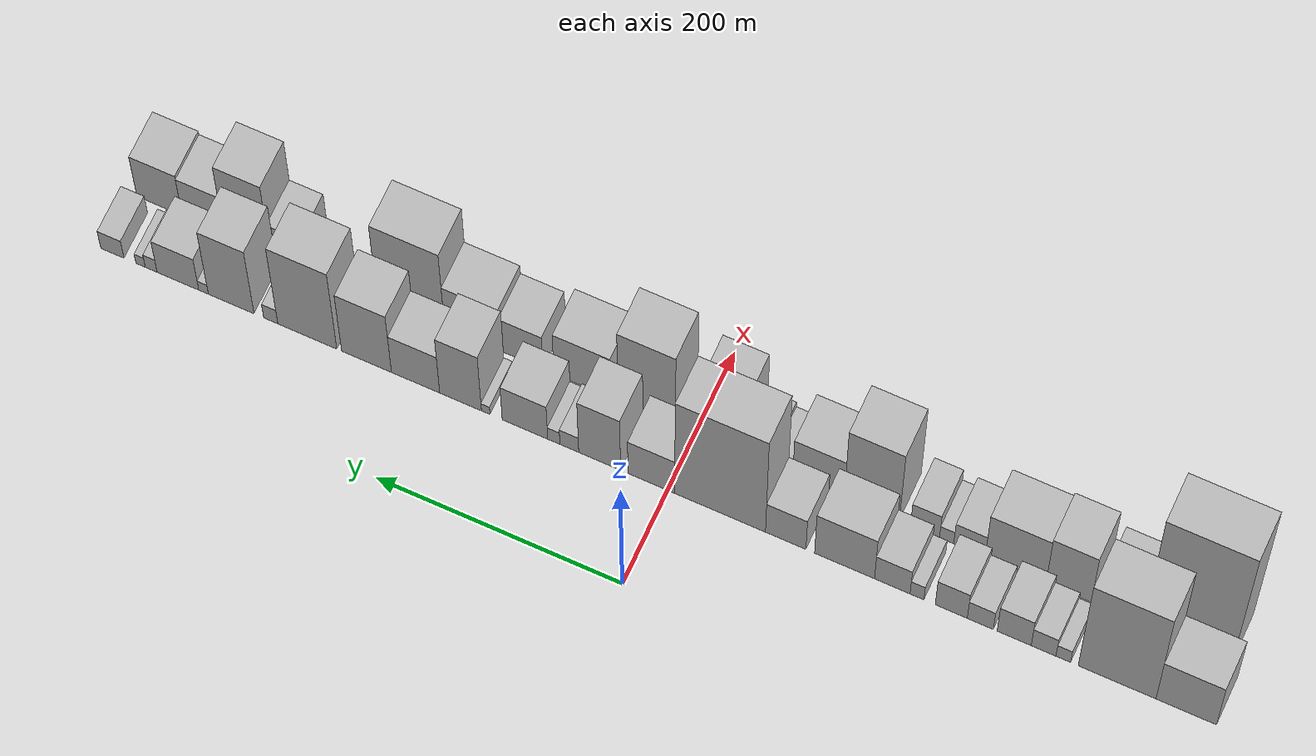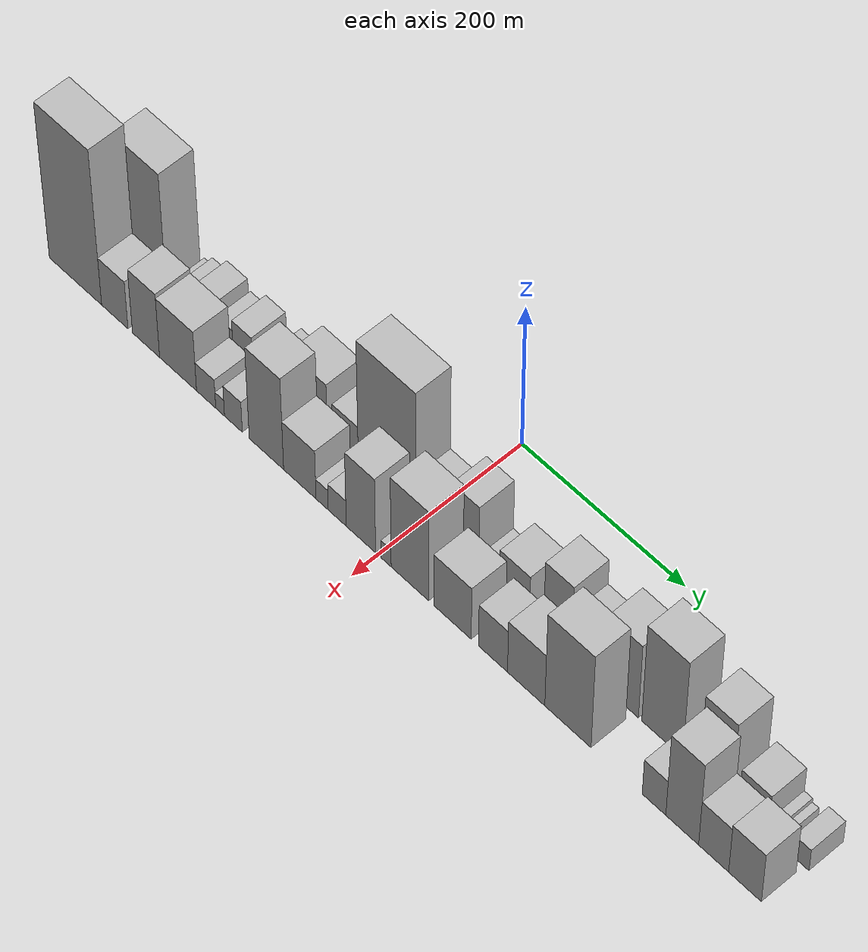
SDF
<sdf version="1.6">
 <world name="default">
  <scene>
   <sky><clouds><speed>12</speed></clouds></sky>
   <ambient>0.4 0.4 0.4 1</ambient>
   <background>0.7 0.7 0.7 1</background>
   <shadows>1</shadows>
  </scene>
  <gravity>0 0 -9.8066</gravity>
  <magnetic_field>6e-06 2.3e-05 -4.2e-05</magnetic_field>
  <physics default="0" name="default_physics" type="ode">
   <ode>
    <solver>
     <type>quick</type>
     <iters>10</iters>
     <sor>1.0</sor>
     <use_dynamic_moi_rescaling>0</use_dynamic_moi_rescaling>
    </solver>
    <constraints>
     <cfm>0</cfm>
     <erp>0.2</erp>
     <contact_max_correcting_vel>100</contact_max_correcting_vel>
     <contact_surface_layer>0.001</contact_surface_layer>
    </constraints>
   </ode>
   <max_step_size>0.004</max_step_size>
   <real_time_factor>1</real_time_factor>
   <real_time_update_rate>250</real_time_update_rate>
  </physics>
  <light name="sun" type="directional">
   <pose>0 0 10 0 0 0</pose>
   <diffuse>0.8 0.8 0.8 1</diffuse>
   <specular>0.2 0.2 0.2 1</specular>
   <attenuation>
    <range>1000</range>
    <constant>0.9</constant>
    <linear>0.01</linear>
    <quadratic>0.001</quadratic>
   </attenuation>
   <direction>-0.5 0.1 -0.9</direction>
  </light>
  <model name="building_1">
   <static>1</static>
   <pose>100.0000 -414.1262 0 0.000000 0.000000 0.000000</pose>
   <link name="link">
    <pose>0 0 40.50 0 0 0</pose>
    <collision name="collision"><geometry><box><size>40.0000 47.7477 81.0000</size></box></geometry></collision>
    <visual name="visual">
     <cast_shadows>0</cast_shadows>
     <geometry><box><size>40.0000 47.7477 81.0000</size></box></geometry>
     <material>
      <script>
       <uri>model://HANNAS_wall/materials/scripts</uri>
       <uri>model://HANNAS_wall/materials/textures</uri>
       <name>vrc/HANNAS_wall</name>
      </script>
     </material>
    </visual>
   </link>
  </model>
  <model name="building_2">
   <static>1</static>
   <pose>100.0000 -359.4603 0 0.000000 0.000000 0.000000</pose>
   <link name="link">
    <pose>0 0 87.00 0 0 0</pose>
    <collision name="collision"><geometry><box><size>40.0000 61.5841 174.0000</size></box></geometry></collision>
    <visual name="visual">
     <cast_shadows>0</cast_shadows>
     <geometry><box><size>40.0000 61.5841 174.0000</size></box></geometry>
     <material>
      <script>
       <uri>model://HANNAS_wall/materials/scripts</uri>
       <uri>model://HANNAS_wall/materials/textures</uri>
       <name>vrc/HANNAS_wall</name>
      </script>
     </material>
    </visual>
   </link>
  </model>
  <model name="building_3">
   <static>1</static>
   <pose>100.0000 -316.8446 0 0.000000 0.000000 0.000000</pose>
   <link name="link">
    <pose>0 0 12.00 0 0 0</pose>
    <collision name="collision"><geometry><box><size>40.0000 11.6473 24.0000</size></box></geometry></collision>
    <visual name="visual">
     <cast_shadows>0</cast_shadows>
     <geometry><box><size>40.0000 11.6473 24.0000</size></box></geometry>
     <material>
      <script>
       <uri>model://HANNAS_wall/materials/scripts</uri>
       <uri>model://HANNAS_wall/materials/textures</uri>
       <name>vrc/HANNAS_wall</name>
      </script>
     </material>
    </visual>
   </link>
  </model>
  <model name="building_4">
   <static>1</static>
   <pose>100.0000 -301.1855 0 0.000000 0.000000 0.000000</pose>
   <link name="link">
    <pose>0 0 18.00 0 0 0</pose>
    <collision name="collision"><geometry><box><size>40.0000 19.6709 36.0000</size></box></geometry></collision>
    <visual name="visual">
     <cast_shadows>0</cast_shadows>
     <geometry><box><size>40.0000 19.6709 36.0000</size></box></geometry>
     <material>
      <script>
       <uri>model://HANNAS_wall/materials/scripts</uri>
       <uri>model://HANNAS_wall/materials/textures</uri>
       <name>vrc/HANNAS_wall</name>
      </script>
     </material>
    </visual>
   </link>
  </model>
  <model name="building_5">
   <static>1</static>
   <pose>100.0000 -277.7827 0 0.000000 0.000000 0.000000</pose>
   <link name="link">
    <pose>0 0 25.50 0 0 0</pose>
    <collision name="collision"><geometry><box><size>40.0000 27.1347 51.0000</size></box></geometry></collision>
    <visual name="visual">
     <cast_shadows>0</cast_shadows>
     <geometry><box><size>40.0000 27.1347 51.0000</size></box></geometry>
     <material>
      <script>
       <uri>model://HANNAS_wall/materials/scripts</uri>
       <uri>model://HANNAS_wall/materials/textures</uri>
       <name>vrc/HANNAS_wall</name>
      </script>
     </material>
    </visual>
   </link>
  </model>
  <model name="building_6">
   <static>1</static>
   <pose>100.0000 -250.8460 0 0.000000 0.000000 0.000000</pose>
   <link name="link">
    <pose>0 0 18.00 0 0 0</pose>
    <collision name="collision"><geometry><box><size>40.0000 20.7386 36.0000</size></box></geometry></collision>
    <visual name="visual">
     <cast_shadows>0</cast_shadows>
     <geometry><box><size>40.0000 20.7386 36.0000</size></box></geometry>
     <material>
      <script>
       <uri>model://HANNAS_wall/materials/scripts</uri>
       <uri>model://HANNAS_wall/materials/textures</uri>
       <name>vrc/HANNAS_wall</name>
      </script>
     </material>
    </visual>
   </link>
  </model>
  <model name="building_7">
   <static>1</static>
   <pose>100.0000 -227.6846 0 0.000000 0.000000 0.000000</pose>
   <link name="link">
    <pose>0 0 25.50 0 0 0</pose>
    <collision name="collision"><geometry><box><size>40.0000 25.5841 51.0000</size></box></geometry></collision>
    <visual name="visual">
     <cast_shadows>0</cast_shadows>
     <geometry><box><size>40.0000 25.5841 51.0000</size></box></geometry>
     <material>
      <script>
       <uri>model://HANNAS_wall/materials/scripts</uri>
       <uri>model://HANNAS_wall/materials/textures</uri>
       <name>vrc/HANNAS_wall</name>
      </script>
     </material>
    </visual>
   </link>
  </model>
  <model name="building_8">
   <static>1</static>
   <pose>100.0000 -200.3290 0 0.000000 0.000000 0.000000</pose>
   <link name="link">
    <pose>0 0 13.50 0 0 0</pose>
    <collision name="collision"><geometry><box><size>40.0000 11.1272 27.0000</size></box></geometry></collision>
    <visual name="visual">
     <cast_shadows>0</cast_shadows>
     <geometry><box><size>40.0000 11.1272 27.0000</size></box></geometry>
     <material>
      <script>
       <uri>model://HANNAS_wall/materials/scripts</uri>
       <uri>model://HANNAS_wall/materials/textures</uri>
       <name>vrc/HANNAS_wall</name>
      </script>
     </material>
    </visual>
   </link>
  </model>
  <model name="building_9">
   <static>1</static>
   <pose>100.0000 -180.5506 0 0.000000 0.000000 0.000000</pose>
   <link name="link">
    <pose>0 0 24.00 0 0 0</pose>
    <collision name="collision"><geometry><box><size>40.0000 28.4294 48.0000</size></box></geometry></collision>
    <visual name="visual">
     <cast_shadows>0</cast_shadows>
     <geometry><box><size>40.0000 28.4294 48.0000</size></box></geometry>
     <material>
      <script>
       <uri>model://HANNAS_wall/materials/scripts</uri>
       <uri>model://HANNAS_wall/materials/textures</uri>
       <name>vrc/HANNAS_wall</name>
      </script>
     </material>
    </visual>
   </link>
  </model>
  <model name="building_10">
   <static>1</static>
   <pose>100.0000 -142.2828 0 0.000000 0.000000 0.000000</pose>
   <link name="link">
    <pose>0 0 40.50 0 0 0</pose>
    <collision name="collision"><geometry><box><size>40.0000 48.1063 81.0000</size></box></geometry></collision>
    <visual name="visual">
     <cast_shadows>0</cast_shadows>
     <geometry><box><size>40.0000 48.1063 81.0000</size></box></geometry>
     <material>
      <script>
       <uri>model://HANNAS_wall/materials/scripts</uri>
       <uri>model://HANNAS_wall/materials/textures</uri>
       <name>vrc/HANNAS_wall</name>
      </script>
     </material>
    </visual>
   </link>
  </model>
  <model name="building_11">
   <static>1</static>
   <pose>100.0000 -94.9542 0 0.000000 0.000000 0.000000</pose>
   <link name="link">
    <pose>0 0 30.00 0 0 0</pose>
    <collision name="collision"><geometry><box><size>40.0000 32.5510 60.0000</size></box></geometry></collision>
    <visual name="visual">
     <cast_shadows>0</cast_shadows>
     <geometry><box><size>40.0000 32.5510 60.0000</size></box></geometry>
     <material>
      <script>
       <uri>model://HANNAS_wall/materials/scripts</uri>
       <uri>model://HANNAS_wall/materials/textures</uri>
       <name>vrc/HANNAS_wall</name>
      </script>
     </material>
    </visual>
   </link>
  </model>
  <model name="building_12">
   <static>1</static>
   <pose>100.0000 -42.0982 0 0.000000 0.000000 0.000000</pose>
   <link name="link">
    <pose>0 0 93.00 0 0 0</pose>
    <collision name="collision"><geometry><box><size>40.0000 73.1609 186.0000</size></box></geometry></collision>
    <visual name="visual">
     <cast_shadows>0</cast_shadows>
     <geometry><box><size>40.0000 73.1609 186.0000</size></box></geometry>
     <material>
      <script>
       <uri>model://HANNAS_wall/materials/scripts</uri>
       <uri>model://HANNAS_wall/materials/textures</uri>
       <name>vrc/HANNAS_wall</name>
      </script>
     </material>
    </visual>
   </link>
  </model>
  <model name="building_13">
   <static>1</static>
   <pose>100.0000 13.4910 0 0.000000 0.000000 0.000000</pose>
   <link name="link">
    <pose>0 0 33.00 0 0 0</pose>
    <collision name="collision"><geometry><box><size>40.0000 38.0175 66.0000</size></box></geometry></collision>
    <visual name="visual">
     <cast_shadows>0</cast_shadows>
     <geometry><box><size>40.0000 38.0175 66.0000</size></box></geometry>
     <material>
      <script>
       <uri>model://HANNAS_wall/materials/scripts</uri>
       <uri>model://HANNAS_wall/materials/textures</uri>
       <name>vrc/HANNAS_wall</name>
      </script>
     </material>
    </visual>
   </link>
  </model>
  <model name="building_14">
   <static>1</static>
   <pose>100.0000 55.5335 0 0.000000 0.000000 0.000000</pose>
   <link name="link">
    <pose>0 0 51.00 0 0 0</pose>
    <collision name="collision"><geometry><box><size>40.0000 34.0676 102.0000</size></box></geometry></collision>
    <visual name="visual">
     <cast_shadows>0</cast_shadows>
     <geometry><box><size>40.0000 34.0676 102.0000</size></box></geometry>
     <material>
      <script>
       <uri>model://HANNAS_wall/materials/scripts</uri>
       <uri>model://HANNAS_wall/materials/textures</uri>
       <name>vrc/HANNAS_wall</name>
      </script>
     </material>
    </visual>
   </link>
  </model>
  <model name="building_15">
   <static>1</static>
   <pose>100.0000 80.2438 0 0.000000 0.000000 0.000000</pose>
   <link name="link">
    <pose>0 0 15.00 0 0 0</pose>
    <collision name="collision"><geometry><box><size>40.0000 15.3530 30.0000</size></box></geometry></collision>
    <visual name="visual">
     <cast_shadows>0</cast_shadows>
     <geometry><box><size>40.0000 15.3530 30.0000</size></box></geometry>
     <material>
      <script>
       <uri>model://HANNAS_wall/materials/scripts</uri>
       <uri>model://HANNAS_wall/materials/textures</uri>
       <name>vrc/HANNAS_wall</name>
      </script>
     </material>
    </visual>
   </link>
  </model>
  <model name="building_16">
   <static>1</static>
   <pose>100.0000 92.8796 0 0.000000 0.000000 0.000000</pose>
   <link name="link">
    <pose>0 0 12.00 0 0 0</pose>
    <collision name="collision"><geometry><box><size>40.0000 9.9186 24.0000</size></box></geometry></collision>
    <visual name="visual">
     <cast_shadows>0</cast_shadows>
     <geometry><box><size>40.0000 9.9186 24.0000</size></box></geometry>
     <material>
      <script>
       <uri>model://HANNAS_wall/materials/scripts</uri>
       <uri>model://HANNAS_wall/materials/textures</uri>
       <name>vrc/HANNAS_wall</name>
      </script>
     </material>
    </visual>
   </link>
  </model>
  <model name="building_17">
   <static>1</static>
   <pose>100.0000 116.4031 0 0.000000 0.000000 0.000000</pose>
   <link name="link">
    <pose>0 0 33.00 0 0 0</pose>
    <collision name="collision"><geometry><box><size>40.0000 37.1284 66.0000</size></box></geometry></collision>
    <visual name="visual">
     <cast_shadows>0</cast_shadows>
     <geometry><box><size>40.0000 37.1284 66.0000</size></box></geometry>
     <material>
      <script>
       <uri>model://HANNAS_wall/materials/scripts</uri>
       <uri>model://HANNAS_wall/materials/textures</uri>
       <name>vrc/HANNAS_wall</name>
      </script>
     </material>
    </visual>
   </link>
  </model>
  <model name="building_18">
   <static>1</static>
   <pose>100.0000 148.4483 0 0.000000 0.000000 0.000000</pose>
   <link name="link">
    <pose>0 0 7.50 0 0 0</pose>
    <collision name="collision"><geometry><box><size>40.0000 6.9618 15.0000</size></box></geometry></collision>
    <visual name="visual">
     <cast_shadows>0</cast_shadows>
     <geometry><box><size>40.0000 6.9618 15.0000</size></box></geometry>
     <material>
      <script>
       <uri>model://HANNAS_wall/materials/scripts</uri>
       <uri>model://HANNAS_wall/materials/textures</uri>
       <name>vrc/HANNAS_wall</name>
      </script>
     </material>
    </visual>
   </link>
  </model>
  <model name="building_19">
   <static>1</static>
   <pose>100.0000 169.0224 0 0.000000 0.000000 0.000000</pose>
   <link name="link">
    <pose>0 0 54.00 0 0 0</pose>
    <collision name="collision"><geometry><box><size>40.0000 34.1865 108.0000</size></box></geometry></collision>
    <visual name="visual">
     <cast_shadows>0</cast_shadows>
     <geometry><box><size>40.0000 34.1865 108.0000</size></box></geometry>
     <material>
      <script>
       <uri>model://HANNAS_wall/materials/scripts</uri>
       <uri>model://HANNAS_wall/materials/textures</uri>
       <name>vrc/HANNAS_wall</name>
      </script>
     </material>
    </visual>
   </link>
  </model>
  <model name="building_20">
   <static>1</static>
   <pose>100.0000 205.9224 0 0.000000 0.000000 0.000000</pose>
   <link name="link">
    <pose>0 0 36.00 0 0 0</pose>
    <collision name="collision"><geometry><box><size>40.0000 39.6135 72.0000</size></box></geometry></collision>
    <visual name="visual">
     <cast_shadows>0</cast_shadows>
     <geometry><box><size>40.0000 39.6135 72.0000</size></box></geometry>
     <material>
      <script>
       <uri>model://HANNAS_wall/materials/scripts</uri>
       <uri>model://HANNAS_wall/materials/textures</uri>
       <name>vrc/HANNAS_wall</name>
      </script>
     </material>
    </visual>
   </link>
  </model>
  <model name="building_21">
   <static>1</static>
   <pose>100.0000 246.2285 0 0.000000 0.000000 0.000000</pose>
   <link name="link">
    <pose>0 0 55.50 0 0 0</pose>
    <collision name="collision"><geometry><box><size>40.0000 40.9987 111.0000</size></box></geometry></collision>
    <visual name="visual">
     <cast_shadows>0</cast_shadows>
     <geometry><box><size>40.0000 40.9987 111.0000</size></box></geometry>
     <material>
      <script>
       <uri>model://HANNAS_wall/materials/scripts</uri>
       <uri>model://HANNAS_wall/materials/textures</uri>
       <name>vrc/HANNAS_wall</name>
      </script>
     </material>
    </visual>
   </link>
  </model>
  <model name="building_22">
   <static>1</static>
   <pose>100.0000 295.0886 0 0.000000 0.000000 0.000000</pose>
   <link name="link">
    <pose>0 0 73.50 0 0 0</pose>
    <collision name="collision"><geometry><box><size>40.0000 48.7214 147.0000</size></box></geometry></collision>
    <visual name="visual">
     <cast_shadows>0</cast_shadows>
     <geometry><box><size>40.0000 48.7214 147.0000</size></box></geometry>
     <material>
      <script>
       <uri>model://HANNAS_wall/materials/scripts</uri>
       <uri>model://HANNAS_wall/materials/textures</uri>
       <name>vrc/HANNAS_wall</name>
      </script>
     </material>
    </visual>
   </link>
  </model>
  <model name="building_23">
   <static>1</static>
   <pose>100.0000 325.3038 0 0.000000 0.000000 0.000000</pose>
   <link name="link">
    <pose>0 0 13.50 0 0 0</pose>
    <collision name="collision"><geometry><box><size>40.0000 11.7092 27.0000</size></box></geometry></collision>
    <visual name="visual">
     <cast_shadows>0</cast_shadows>
     <geometry><box><size>40.0000 11.7092 27.0000</size></box></geometry>
     <material>
      <script>
       <uri>model://HANNAS_wall/materials/scripts</uri>
       <uri>model://HANNAS_wall/materials/textures</uri>
       <name>vrc/HANNAS_wall</name>
      </script>
     </material>
    </visual>
   </link>
  </model>
  <model name="building_24">
   <static>1</static>
   <pose>100.0000 358.0722 0 0.000000 0.000000 0.000000</pose>
   <link name="link">
    <pose>0 0 60.00 0 0 0</pose>
    <collision name="collision"><geometry><box><size>40.0000 37.8276 120.0000</size></box></geometry></collision>
    <visual name="visual">
     <cast_shadows>0</cast_shadows>
     <geometry><box><size>40.0000 37.8276 120.0000</size></box></geometry>
     <material>
      <script>
       <uri>model://HANNAS_wall/materials/scripts</uri>
       <uri>model://HANNAS_wall/materials/textures</uri>
       <name>vrc/HANNAS_wall</name>
      </script>
     </material>
    </visual>
   </link>
  </model>
  <model name="building_25">
   <static>1</static>
   <pose>100.0000 380.9913 0 0.000000 0.000000 0.000000</pose>
   <link name="link">
    <pose>0 0 9.00 0 0 0</pose>
    <collision name="collision"><geometry><box><size>40.0000 8.0105 18.0000</size></box></geometry></collision>
    <visual name="visual">
     <cast_shadows>0</cast_shadows>
     <geometry><box><size>40.0000 8.0105 18.0000</size></box></geometry>
     <material>
      <script>
       <uri>model://HANNAS_wall/materials/scripts</uri>
       <uri>model://HANNAS_wall/materials/textures</uri>
       <name>vrc/HANNAS_wall</name>
      </script>
     </material>
    </visual>
   </link>
  </model>
  <model name="building_26">
   <static>1</static>
   <pose>100.0000 402.2794 0 0.000000 0.000000 0.000000</pose>
   <link name="link">
    <pose>0 0 30.00 0 0 0</pose>
    <collision name="collision"><geometry><box><size>40.0000 34.5655 60.0000</size></box></geometry></collision>
    <visual name="visual">
     <cast_shadows>0</cast_shadows>
     <geometry><box><size>40.0000 34.5655 60.0000</size></box></geometry>
     <material>
      <script>
       <uri>model://HANNAS_wall/materials/scripts</uri>
       <uri>model://HANNAS_wall/materials/textures</uri>
       <name>vrc/HANNAS_wall</name>
      </script>
     </material>
    </visual>
   </link>
  </model>
  <model name="building_27">
   <static>1</static>
   <pose>100.0000 424.5199 0 0.000000 0.000000 0.000000</pose>
   <link name="link">
    <pose>0 0 12.00 0 0 0</pose>
    <collision name="collision"><geometry><box><size>40.0000 9.9155 24.0000</size></box></geometry></collision>
    <visual name="visual">
     <cast_shadows>0</cast_shadows>
     <geometry><box><size>40.0000 9.9155 24.0000</size></box></geometry>
     <material>
      <script>
       <uri>model://HANNAS_wall/materials/scripts</uri>
       <uri>model://HANNAS_wall/materials/textures</uri>
       <name>vrc/HANNAS_wall</name>
      </script>
     </material>
    </visual>
   </link>
  </model>
  <model name="building_28">
   <static>1</static>
   <pose>100.0000 433.3435 0 0.000000 0.000000 0.000000</pose>
   <link name="link">
    <pose>0 0 9.00 0 0 0</pose>
    <collision name="collision"><geometry><box><size>40.0000 7.7317 18.0000</size></box></geometry></collision>
    <visual name="visual">
     <cast_shadows>0</cast_shadows>
     <geometry><box><size>40.0000 7.7317 18.0000</size></box></geometry>
     <material>
      <script>
       <uri>model://HANNAS_wall/materials/scripts</uri>
       <uri>model://HANNAS_wall/materials/textures</uri>
       <name>vrc/HANNAS_wall</name>
      </script>
     </material>
    </visual>
   </link>
  </model>
  <model name="building_29">
   <static>1</static>
   <pose>100.0000 456.8699 0 0.000000 0.000000 0.000000</pose>
   <link name="link">
    <pose>0 0 16.50 0 0 0</pose>
    <collision name="collision"><geometry><box><size>40.0000 19.3211 33.0000</size></box></geometry></collision>
    <visual name="visual">
     <cast_shadows>0</cast_shadows>
     <geometry><box><size>40.0000 19.3211 33.0000</size></box></geometry>
     <material>
      <script>
       <uri>model://HANNAS_wall/materials/scripts</uri>
       <uri>model://HANNAS_wall/materials/textures</uri>
       <name>vrc/HANNAS_wall</name>
      </script>
     </material>
    </visual>
   </link>
  </model>
  <model name="building_30">
   <static>1</static>
   <pose>149.0000 -394.7017 0 0.000000 0.000000 0.000000</pose>
   <link name="link">
    <pose>0 0 111.00 0 0 0</pose>
    <collision name="collision"><geometry><box><size>40.0000 70.5965 222.0000</size></box></geometry></collision>
    <visual name="visual">
     <cast_shadows>0</cast_shadows>
     <geometry><box><size>40.0000 70.5965 222.0000</size></box></geometry>
     <material>
      <script>
       <uri>model://HANNAS_wall/materials/scripts</uri>
       <uri>model://HANNAS_wall/materials/textures</uri>
       <name>vrc/HANNAS_wall</name>
      </script>
     </material>
    </visual>
   </link>
  </model>
  <model name="building_31">
   <static>1</static>
   <pose>149.0000 -341.7816 0 0.000000 0.000000 0.000000</pose>
   <link name="link">
    <pose>0 0 34.50 0 0 0</pose>
    <collision name="collision"><geometry><box><size>40.0000 35.2437 69.0000</size></box></geometry></collision>
    <visual name="visual">
     <cast_shadows>0</cast_shadows>
     <geometry><box><size>40.0000 35.2437 69.0000</size></box></geometry>
     <material>
      <script>
       <uri>model://HANNAS_wall/materials/scripts</uri>
       <uri>model://HANNAS_wall/materials/textures</uri>
       <name>vrc/HANNAS_wall</name>
      </script>
     </material>
    </visual>
   </link>
  </model>
  <model name="building_32">
   <static>1</static>
   <pose>149.0000 -300.1477 0 0.000000 0.000000 0.000000</pose>
   <link name="link">
    <pose>0 0 46.50 0 0 0</pose>
    <collision name="collision"><geometry><box><size>40.0000 36.0241 93.0000</size></box></geometry></collision>
    <visual name="visual">
     <cast_shadows>0</cast_shadows>
     <geometry><box><size>40.0000 36.0241 93.0000</size></box></geometry>
     <material>
      <script>
       <uri>model://HANNAS_wall/materials/scripts</uri>
       <uri>model://HANNAS_wall/materials/textures</uri>
       <name>vrc/HANNAS_wall</name>
      </script>
     </material>
    </visual>
   </link>
  </model>
  <model name="building_33">
   <static>1</static>
   <pose>149.0000 -257.8042 0 0.000000 0.000000 0.000000</pose>
   <link name="link">
    <pose>0 0 43.50 0 0 0</pose>
    <collision name="collision"><geometry><box><size>40.0000 48.6628 87.0000</size></box></geometry></collision>
    <visual name="visual">
     <cast_shadows>0</cast_shadows>
     <geometry><box><size>40.0000 48.6628 87.0000</size></box></geometry>
     <material>
      <script>
       <uri>model://HANNAS_wall/materials/scripts</uri>
       <uri>model://HANNAS_wall/materials/textures</uri>
       <name>vrc/HANNAS_wall</name>
      </script>
     </material>
    </visual>
   </link>
  </model>
  <model name="building_34">
   <static>1</static>
   <pose>149.0000 -220.9112 0 0.000000 0.000000 0.000000</pose>
   <link name="link">
    <pose>0 0 21.00 0 0 0</pose>
    <collision name="collision"><geometry><box><size>40.0000 25.1232 42.0000</size></box></geometry></collision>
    <visual name="visual">
     <cast_shadows>0</cast_shadows>
     <geometry><box><size>40.0000 25.1232 42.0000</size></box></geometry>
     <material>
      <script>
       <uri>model://HANNAS_wall/materials/scripts</uri>
       <uri>model://HANNAS_wall/materials/textures</uri>
       <name>vrc/HANNAS_wall</name>
      </script>
     </material>
    </visual>
   </link>
  </model>
  <model name="building_35">
   <static>1</static>
   <pose>149.0000 -202.6494 0 0.000000 0.000000 0.000000</pose>
   <link name="link">
    <pose>0 0 12.00 0 0 0</pose>
    <collision name="collision"><geometry><box><size>40.0000 11.4005 24.0000</size></box></geometry></collision>
    <visual name="visual">
     <cast_shadows>0</cast_shadows>
     <geometry><box><size>40.0000 11.4005 24.0000</size></box></geometry>
     <material>
      <script>
       <uri>model://HANNAS_wall/materials/scripts</uri>
       <uri>model://HANNAS_wall/materials/textures</uri>
       <name>vrc/HANNAS_wall</name>
      </script>
     </material>
    </visual>
   </link>
  </model>
  <model name="building_36">
   <static>1</static>
   <pose>149.0000 -185.3398 0 0.000000 0.000000 0.000000</pose>
   <link name="link">
    <pose>0 0 22.50 0 0 0</pose>
    <collision name="collision"><geometry><box><size>40.0000 23.2188 45.0000</size></box></geometry></collision>
    <visual name="visual">
     <cast_shadows>0</cast_shadows>
     <geometry><box><size>40.0000 23.2188 45.0000</size></box></geometry>
     <material>
      <script>
       <uri>model://HANNAS_wall/materials/scripts</uri>
       <uri>model://HANNAS_wall/materials/textures</uri>
       <name>vrc/HANNAS_wall</name>
      </script>
     </material>
    </visual>
   </link>
  </model>
  <model name="building_37">
   <static>1</static>
   <pose>149.0000 -142.5605 0 0.000000 0.000000 0.000000</pose>
   <link name="link">
    <pose>0 0 67.50 0 0 0</pose>
    <collision name="collision"><geometry><box><size>40.0000 44.3399 135.0000</size></box></geometry></collision>
    <visual name="visual">
     <cast_shadows>0</cast_shadows>
     <geometry><box><size>40.0000 44.3399 135.0000</size></box></geometry>
     <material>
      <script>
       <uri>model://HANNAS_wall/materials/scripts</uri>
       <uri>model://HANNAS_wall/materials/textures</uri>
       <name>vrc/HANNAS_wall</name>
      </script>
     </material>
    </visual>
   </link>
  </model>
  <model name="building_38">
   <static>1</static>
   <pose>149.0000 -99.6247 0 0.000000 0.000000 0.000000</pose>
   <link name="link">
    <pose>0 0 36.00 0 0 0</pose>
    <collision name="collision"><geometry><box><size>40.0000 41.5317 72.0000</size></box></geometry></collision>
    <visual name="visual">
     <cast_shadows>0</cast_shadows>
     <geometry><box><size>40.0000 41.5317 72.0000</size></box></geometry>
     <material>
      <script>
       <uri>model://HANNAS_wall/materials/scripts</uri>
       <uri>model://HANNAS_wall/materials/textures</uri>
       <name>vrc/HANNAS_wall</name>
      </script>
     </material>
    </visual>
   </link>
  </model>
  <model name="building_39">
   <static>1</static>
   <pose>149.0000 -71.1358 0 0.000000 0.000000 0.000000</pose>
   <link name="link">
    <pose>0 0 15.00 0 0 0</pose>
    <collision name="collision"><geometry><box><size>40.0000 15.4460 30.0000</size></box></geometry></collision>
    <visual name="visual">
     <cast_shadows>0</cast_shadows>
     <geometry><box><size>40.0000 15.4460 30.0000</size></box></geometry>
     <material>
      <script>
       <uri>model://HANNAS_wall/materials/scripts</uri>
       <uri>model://HANNAS_wall/materials/textures</uri>
       <name>vrc/HANNAS_wall</name>
      </script>
     </material>
    </visual>
   </link>
  </model>
  <model name="building_40">
   <static>1</static>
   <pose>149.0000 -51.9219 0 0.000000 0.000000 0.000000</pose>
   <link name="link">
    <pose>0 0 19.50 0 0 0</pose>
    <collision name="collision"><geometry><box><size>40.0000 22.9818 39.0000</size></box></geometry></collision>
    <visual name="visual">
     <cast_shadows>0</cast_shadows>
     <geometry><box><size>40.0000 22.9818 39.0000</size></box></geometry>
     <material>
      <script>
       <uri>model://HANNAS_wall/materials/scripts</uri>
       <uri>model://HANNAS_wall/materials/textures</uri>
       <name>vrc/HANNAS_wall</name>
      </script>
     </material>
    </visual>
   </link>
  </model>
  <model name="building_41">
   <static>1</static>
   <pose>149.0000 -21.9400 0 0.000000 0.000000 0.000000</pose>
   <link name="link">
    <pose>0 0 55.50 0 0 0</pose>
    <collision name="collision"><geometry><box><size>40.0000 36.9820 111.0000</size></box></geometry></collision>
    <visual name="visual">
     <cast_shadows>0</cast_shadows>
     <geometry><box><size>40.0000 36.9820 111.0000</size></box></geometry>
     <material>
      <script>
       <uri>model://HANNAS_wall/materials/scripts</uri>
       <uri>model://HANNAS_wall/materials/textures</uri>
       <name>vrc/HANNAS_wall</name>
      </script>
     </material>
    </visual>
   </link>
  </model>
  <model name="building_42">
   <static>1</static>
   <pose>149.0000 9.8063 0 0.000000 0.000000 0.000000</pose>
   <link name="link">
    <pose>0 0 13.50 0 0 0</pose>
    <collision name="collision"><geometry><box><size>40.0000 12.5106 27.0000</size></box></geometry></collision>
    <visual name="visual">
     <cast_shadows>0</cast_shadows>
     <geometry><box><size>40.0000 12.5106 27.0000</size></box></geometry>
     <material>
      <script>
       <uri>model://HANNAS_wall/materials/scripts</uri>
       <uri>model://HANNAS_wall/materials/textures</uri>
       <name>vrc/HANNAS_wall</name>
      </script>
     </material>
    </visual>
   </link>
  </model>
  <model name="building_43">
   <static>1</static>
   <pose>149.0000 39.5148 0 0.000000 0.000000 0.000000</pose>
   <link name="link">
    <pose>0 0 67.50 0 0 0</pose>
    <collision name="collision"><geometry><box><size>40.0000 46.9064 135.0000</size></box></geometry></collision>
    <visual name="visual">
     <cast_shadows>0</cast_shadows>
     <geometry><box><size>40.0000 46.9064 135.0000</size></box></geometry>
     <material>
      <script>
       <uri>model://HANNAS_wall/materials/scripts</uri>
       <uri>model://HANNAS_wall/materials/textures</uri>
       <name>vrc/HANNAS_wall</name>
      </script>
     </material>
    </visual>
   </link>
  </model>
  <model name="building_44">
   <static>1</static>
   <pose>149.0000 92.1988 0 0.000000 0.000000 0.000000</pose>
   <link name="link">
    <pose>0 0 39.00 0 0 0</pose>
    <collision name="collision"><geometry><box><size>40.0000 46.4616 78.0000</size></box></geometry></collision>
    <visual name="visual">
     <cast_shadows>0</cast_shadows>
     <geometry><box><size>40.0000 46.4616 78.0000</size></box></geometry>
     <material>
      <script>
       <uri>model://HANNAS_wall/materials/scripts</uri>
       <uri>model://HANNAS_wall/materials/textures</uri>
       <name>vrc/HANNAS_wall</name>
      </script>
     </material>
    </visual>
   </link>
  </model>
  <model name="building_45">
   <static>1</static>
   <pose>149.0000 142.1296 0 0.000000 0.000000 0.000000</pose>
   <link name="link">
    <pose>0 0 31.50 0 0 0</pose>
    <collision name="collision"><geometry><box><size>40.0000 35.4000 63.0000</size></box></geometry></collision>
    <visual name="visual">
     <cast_shadows>0</cast_shadows>
     <geometry><box><size>40.0000 35.4000 63.0000</size></box></geometry>
     <material>
      <script>
       <uri>model://HANNAS_wall/materials/scripts</uri>
       <uri>model://HANNAS_wall/materials/textures</uri>
       <name>vrc/HANNAS_wall</name>
      </script>
     </material>
    </visual>
   </link>
  </model>
  <model name="building_46">
   <static>1</static>
   <pose>149.0000 182.4694 0 0.000000 0.000000 0.000000</pose>
   <link name="link">
    <pose>0 0 39.00 0 0 0</pose>
    <collision name="collision"><geometry><box><size>40.0000 45.2795 78.0000</size></box></geometry></collision>
    <visual name="visual">
     <cast_shadows>0</cast_shadows>
     <geometry><box><size>40.0000 45.2795 78.0000</size></box></geometry>
     <material>
      <script>
       <uri>model://HANNAS_wall/materials/scripts</uri>
       <uri>model://HANNAS_wall/materials/textures</uri>
       <name>vrc/HANNAS_wall</name>
      </script>
     </material>
    </visual>
   </link>
  </model>
  <model name="building_47">
   <static>1</static>
   <pose>149.0000 232.9284 0 0.000000 0.000000 0.000000</pose>
   <link name="link">
    <pose>0 0 70.50 0 0 0</pose>
    <collision name="collision"><geometry><box><size>40.0000 55.6385 141.0000</size></box></geometry></collision>
    <visual name="visual">
     <cast_shadows>0</cast_shadows>
     <geometry><box><size>40.0000 55.6385 141.0000</size></box></geometry>
     <material>
      <script>
       <uri>model://HANNAS_wall/materials/scripts</uri>
       <uri>model://HANNAS_wall/materials/textures</uri>
       <name>vrc/HANNAS_wall</name>
      </script>
     </material>
    </visual>
   </link>
  </model>
  <model name="building_48">
   <static>1</static>
   <pose>149.0000 335.4533 0 0.000000 0.000000 0.000000</pose>
   <link name="link">
    <pose>0 0 27.00 0 0 0</pose>
    <collision name="collision"><geometry><box><size>40.0000 27.8038 54.0000</size></box></geometry></collision>
    <visual name="visual">
     <cast_shadows>0</cast_shadows>
     <geometry><box><size>40.0000 27.8038 54.0000</size></box></geometry>
     <material>
      <script>
       <uri>model://HANNAS_wall/materials/scripts</uri>
       <uri>model://HANNAS_wall/materials/textures</uri>
       <name>vrc/HANNAS_wall</name>
      </script>
     </material>
    </visual>
   </link>
  </model>
  <model name="building_49">
   <static>1</static>
   <pose>149.0000 368.5718 0 0.000000 0.000000 0.000000</pose>
   <link name="link">
    <pose>0 0 63.00 0 0 0</pose>
    <collision name="collision"><geometry><box><size>40.0000 38.4334 126.0000</size></box></geometry></collision>
    <visual name="visual">
     <cast_shadows>0</cast_shadows>
     <geometry><box><size>40.0000 38.4334 126.0000</size></box></geometry>
     <material>
      <script>
       <uri>model://HANNAS_wall/materials/scripts</uri>
       <uri>model://HANNAS_wall/materials/textures</uri>
       <name>vrc/HANNAS_wall</name>
      </script>
     </material>
    </visual>
   </link>
  </model>
  <model name="building_50">
   <static>1</static>
   <pose>149.0000 405.2470 0 0.000000 0.000000 0.000000</pose>
   <link name="link">
    <pose>0 0 34.50 0 0 0</pose>
    <collision name="collision"><geometry><box><size>40.0000 34.9169 69.0000</size></box></geometry></collision>
    <visual name="visual">
     <cast_shadows>0</cast_shadows>
     <geometry><box><size>40.0000 34.9169 69.0000</size></box></geometry>
     <material>
      <script>
       <uri>model://HANNAS_wall/materials/scripts</uri>
       <uri>model://HANNAS_wall/materials/textures</uri>
       <name>vrc/HANNAS_wall</name>
      </script>
     </material>
    </visual>
   </link>
  </model>
  <model name="building_51">
   <static>1</static>
   <pose>149.0000 441.6230 0 0.000000 0.000000 0.000000</pose>
   <link name="link">
    <pose>0 0 37.50 0 0 0</pose>
    <collision name="collision"><geometry><box><size>40.0000 37.8350 75.0000</size></box></geometry></collision>
    <visual name="visual">
     <cast_shadows>0</cast_shadows>
     <geometry><box><size>40.0000 37.8350 75.0000</size></box></geometry>
     <material>
      <script>
       <uri>model://HANNAS_wall/materials/scripts</uri>
       <uri>model://HANNAS_wall/materials/textures</uri>
       <name>vrc/HANNAS_wall</name>
      </script>
     </material>
    </visual>
   </link>
  </model>
 </world>
</sdf>
